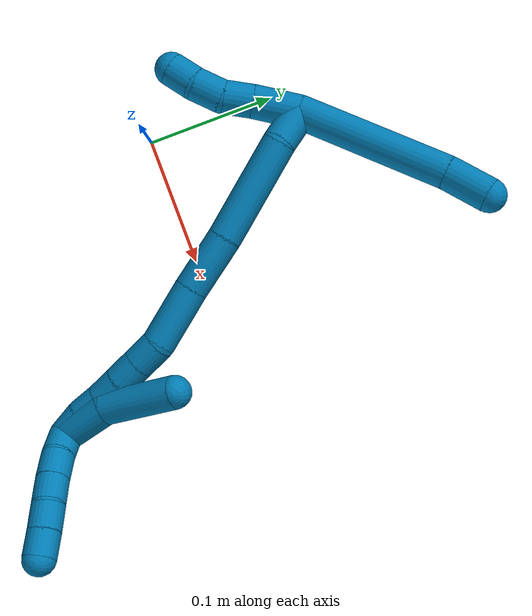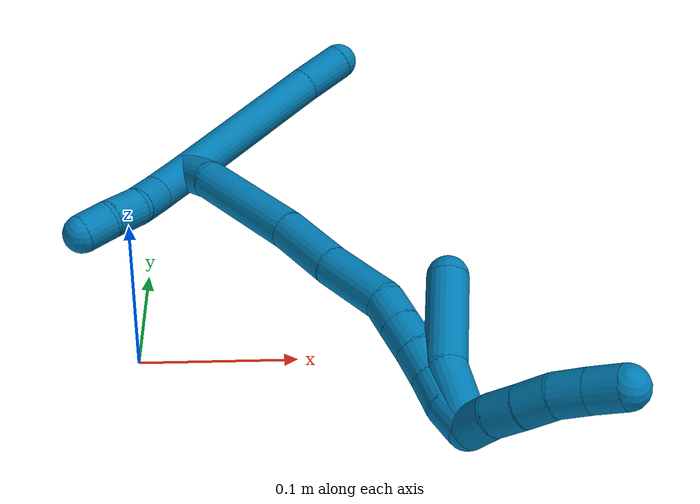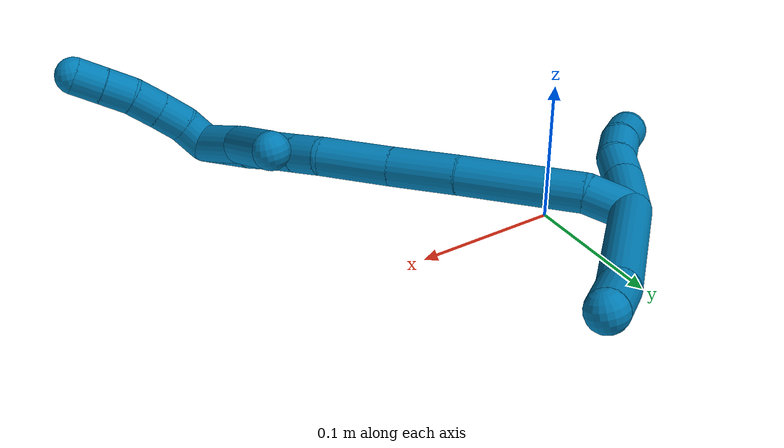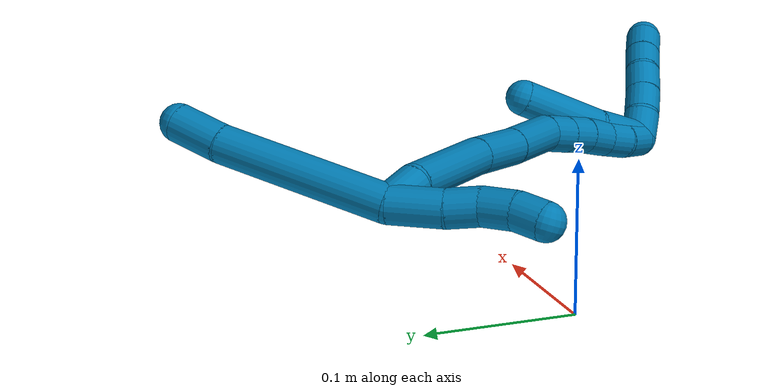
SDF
<sdf version="1.7">
 <world name="default">
  <model name="9">
   <static>0</static>
   <link name="9">
    <collision name="collision-cylinder-e_1_2_8">
     <pose>0.039 0.04317 0.000363 -1.56238 0.734672 -0.729048</pose>
     <geometry><cylinder><radius>0.0125</radius><length>0.116359</length></cylinder></geometry>
     <surface>
      <friction><ode><mu>1.16</mu><mu2>1.16</mu2><slip1>0</slip1><slip2>0</slip2></ode></friction>
      <contact><ode><kp>1e+06</kp><kd>1</kd><max_vel>0</max_vel><min_depth>0.001</min_depth></ode></contact>
     </surface>
    </collision>
    <visual name="visual-cylinder-e_1_2_8">
     <pose>0.039 0.04317 0.000363 -1.56238 0.734672 -0.729048</pose>
     <geometry><cylinder><radius>0.0125</radius><length>0.116359</length></cylinder></geometry>
     <material><ambient>0 0.490196 0.709804 1</ambient></material>
    </visual>
    <collision name="collision-cylinder-e_2_8_6">
     <pose>0.090286 0.097723 0.002293 -1.434 0.818892 -0.723368</pose>
     <geometry><cylinder><radius>0.0125</radius><length>0.033641</length></cylinder></geometry>
     <surface>
      <friction><ode><mu>1.16</mu><mu2>1.16</mu2><slip1>0</slip1><slip2>0</slip2></ode></friction>
      <contact><ode><kp>1e+06</kp><kd>1</kd><max_vel>0</max_vel><min_depth>0.001</min_depth></ode></contact>
     </surface>
    </collision>
    <visual name="visual-cylinder-e_2_8_6">
     <pose>0.090286 0.097723 0.002293 -1.434 0.818892 -0.723368</pose>
     <geometry><cylinder><radius>0.0125</radius><length>0.033641</length></cylinder></geometry>
     <material><ambient>0 0.490196 0.709804 1</ambient></material>
    </visual>
    <collision name="collision-cylinder-e_1_2_9">
     <pose>-0.009605 -0.014171 0.004277 1.27768 -0.575599 -0.432843</pose>
     <geometry><cylinder><radius>0.0125</radius><length>0.035291</length></cylinder></geometry>
     <surface>
      <friction><ode><mu>1.16</mu><mu2>1.16</mu2><slip1>0</slip1><slip2>0</slip2></ode></friction>
      <contact><ode><kp>1e+06</kp><kd>1</kd><max_vel>0</max_vel><min_depth>0.001</min_depth></ode></contact>
     </surface>
    </collision>
    <visual name="visual-cylinder-e_1_2_9">
     <pose>-0.009605 -0.014171 0.004277 1.27768 -0.575599 -0.432843</pose>
     <geometry><cylinder><radius>0.0125</radius><length>0.035291</length></cylinder></geometry>
     <material><ambient>0 0.490196 0.709804 1</ambient></material>
    </visual>
    <collision name="collision-cylinder-e_2_9_10">
     <pose>-0.024412 -0.037145 0.012592 1.14072 -0.492847 -0.319951</pose>
     <geometry><cylinder><radius>0.0125</radius><length>0.021988</length></cylinder></geometry>
     <surface>
      <friction><ode><mu>1.16</mu><mu2>1.16</mu2><slip1>0</slip1><slip2>0</slip2></ode></friction>
      <contact><ode><kp>1e+06</kp><kd>1</kd><max_vel>0</max_vel><min_depth>0.001</min_depth></ode></contact>
     </surface>
    </collision>
    <visual name="visual-cylinder-e_2_9_10">
     <pose>-0.024412 -0.037145 0.012592 1.14072 -0.492847 -0.319951</pose>
     <geometry><cylinder><radius>0.0125</radius><length>0.021988</length></cylinder></geometry>
     <material><ambient>0 0.490196 0.709804 1</ambient></material>
    </visual>
    <collision name="collision-cylinder-e_3_10_11">
     <pose>-0.037664 -0.053575 0.018881 1.28381 -0.791615 -0.605502</pose>
     <geometry><cylinder><radius>0.0125</radius><length>0.022631</length></cylinder></geometry>
     <surface>
      <friction><ode><mu>1.16</mu><mu2>1.16</mu2><slip1>0</slip1><slip2>0</slip2></ode></friction>
      <contact><ode><kp>1e+06</kp><kd>1</kd><max_vel>0</max_vel><min_depth>0.001</min_depth></ode></contact>
     </surface>
    </collision>
    <visual name="visual-cylinder-e_3_10_11">
     <pose>-0.037664 -0.053575 0.018881 1.28381 -0.791615 -0.605502</pose>
     <geometry><cylinder><radius>0.0125</radius><length>0.022631</length></cylinder></geometry>
     <material><ambient>0 0.490196 0.709804 1</ambient></material>
    </visual>
    <collision name="collision-cylinder-e_4_11_5">
     <pose>-0.053603 -0.06742 0.021084 1.57845 -0.903103 -0.909123</pose>
     <geometry><cylinder><radius>0.0125</radius><length>0.02009</length></cylinder></geometry>
     <surface>
      <friction><ode><mu>1.16</mu><mu2>1.16</mu2><slip1>0</slip1><slip2>0</slip2></ode></friction>
      <contact><ode><kp>1e+06</kp><kd>1</kd><max_vel>0</max_vel><min_depth>0.001</min_depth></ode></contact>
     </surface>
    </collision>
    <visual name="visual-cylinder-e_4_11_5">
     <pose>-0.053603 -0.06742 0.021084 1.57845 -0.903103 -0.909123</pose>
     <geometry><cylinder><radius>0.0125</radius><length>0.02009</length></cylinder></geometry>
     <material><ambient>0 0.490196 0.709804 1</ambient></material>
    </visual>
    <collision name="collision-cylinder-e_1_2_12">
     <pose>0.007942 -0.00925 0.007334 0.900405 0.592247 0.292796</pose>
     <geometry><cylinder><radius>0.0125</radius><length>0.028456</length></cylinder></geometry>
     <surface>
      <friction><ode><mu>1.16</mu><mu2>1.16</mu2><slip1>0</slip1><slip2>0</slip2></ode></friction>
      <contact><ode><kp>1e+06</kp><kd>1</kd><max_vel>0</max_vel><min_depth>0.001</min_depth></ode></contact>
     </surface>
    </collision>
    <visual name="visual-cylinder-e_1_2_12">
     <pose>0.007942 -0.00925 0.007334 0.900405 0.592247 0.292796</pose>
     <geometry><cylinder><radius>0.0125</radius><length>0.028456</length></cylinder></geometry>
     <material><ambient>0 0.490196 0.709804 1</ambient></material>
    </visual>
    <collision name="collision-cylinder-e_2_12_13">
     <pose>0.041094 -0.046832 0.025709 1.19923 0.692206 0.483378</pose>
     <geometry><cylinder><radius>0.0125</radius><length>0.078997</length></cylinder></geometry>
     <surface>
      <friction><ode><mu>1.16</mu><mu2>1.16</mu2><slip1>0</slip1><slip2>0</slip2></ode></friction>
      <contact><ode><kp>1e+06</kp><kd>1</kd><max_vel>0</max_vel><min_depth>0.001</min_depth></ode></contact>
     </surface>
    </collision>
    <visual name="visual-cylinder-e_2_12_13">
     <pose>0.041094 -0.046832 0.025709 1.19923 0.692206 0.483378</pose>
     <geometry><cylinder><radius>0.0125</radius><length>0.078997</length></cylinder></geometry>
     <material><ambient>0 0.490196 0.709804 1</ambient></material>
    </visual>
    <collision name="collision-cylinder-e_3_13_14">
     <pose>0.079303 -0.092198 0.042001 1.27171 0.630118 0.472156</pose>
     <geometry><cylinder><radius>0.0125</radius><length>0.044123</length></cylinder></geometry>
     <surface>
      <friction><ode><mu>1.16</mu><mu2>1.16</mu2><slip1>0</slip1><slip2>0</slip2></ode></friction>
      <contact><ode><kp>1e+06</kp><kd>1</kd><max_vel>0</max_vel><min_depth>0.001</min_depth></ode></contact>
     </surface>
    </collision>
    <visual name="visual-cylinder-e_3_13_14">
     <pose>0.079303 -0.092198 0.042001 1.27171 0.630118 0.472156</pose>
     <geometry><cylinder><radius>0.0125</radius><length>0.044123</length></cylinder></geometry>
     <material><ambient>0 0.490196 0.709804 1</ambient></material>
    </visual>
    <collision name="collision-cylinder-e_4_14_15">
     <pose>0.106976 -0.126396 0.053737 1.20962 0.674584 0.475637</pose>
     <geometry><cylinder><radius>0.0125</radius><length>0.046988</length></cylinder></geometry>
     <surface>
      <friction><ode><mu>1.16</mu><mu2>1.16</mu2><slip1>0</slip1><slip2>0</slip2></ode></friction>
      <contact><ode><kp>1e+06</kp><kd>1</kd><max_vel>0</max_vel><min_depth>0.001</min_depth></ode></contact>
     </surface>
    </collision>
    <visual name="visual-cylinder-e_4_14_15">
     <pose>0.106976 -0.126396 0.053737 1.20962 0.674584 0.475637</pose>
     <geometry><cylinder><radius>0.0125</radius><length>0.046988</length></cylinder></geometry>
     <material><ambient>0 0.490196 0.709804 1</ambient></material>
    </visual>
    <collision name="collision-cylinder-e_5_15_16">
     <pose>0.125921 -0.153116 0.061519 1.43574 0.416954 0.365377</pose>
     <geometry><cylinder><radius>0.0125</radius><length>0.021094</length></cylinder></geometry>
     <surface>
      <friction><ode><mu>1.16</mu><mu2>1.16</mu2><slip1>0</slip1><slip2>0</slip2></ode></friction>
      <contact><ode><kp>1e+06</kp><kd>1</kd><max_vel>0</max_vel><min_depth>0.001</min_depth></ode></contact>
     </surface>
    </collision>
    <visual name="visual-cylinder-e_5_15_16">
     <pose>0.125921 -0.153116 0.061519 1.43574 0.416954 0.365377</pose>
     <geometry><cylinder><radius>0.0125</radius><length>0.021094</length></cylinder></geometry>
     <material><ambient>0 0.490196 0.709804 1</ambient></material>
    </visual>
    <collision name="collision-cylinder-e_6_16_17">
     <pose>0.134297 -0.171752 0.064128 1.42752 0.420645 0.365655</pose>
     <geometry><cylinder><radius>0.0125</radius><length>0.020102</length></cylinder></geometry>
     <surface>
      <friction><ode><mu>1.16</mu><mu2>1.16</mu2><slip1>0</slip1><slip2>0</slip2></ode></friction>
      <contact><ode><kp>1e+06</kp><kd>1</kd><max_vel>0</max_vel><min_depth>0.001</min_depth></ode></contact>
     </surface>
    </collision>
    <visual name="visual-cylinder-e_6_16_17">
     <pose>0.134297 -0.171752 0.064128 1.42752 0.420645 0.365655</pose>
     <geometry><cylinder><radius>0.0125</radius><length>0.020102</length></cylinder></geometry>
     <material><ambient>0 0.490196 0.709804 1</ambient></material>
    </visual>
    <collision name="collision-cylinder-e_7_17_18">
     <pose>0.142365 -0.19012 0.066067 1.5032 0.402597 0.376904</pose>
     <geometry><cylinder><radius>0.0125</radius><length>0.020234</length></cylinder></geometry>
     <surface>
      <friction><ode><mu>1.16</mu><mu2>1.16</mu2><slip1>0</slip1><slip2>0</slip2></ode></friction>
      <contact><ode><kp>1e+06</kp><kd>1</kd><max_vel>0</max_vel><min_depth>0.001</min_depth></ode></contact>
     </surface>
    </collision>
    <visual name="visual-cylinder-e_7_17_18">
     <pose>0.142365 -0.19012 0.066067 1.5032 0.402597 0.376904</pose>
     <geometry><cylinder><radius>0.0125</radius><length>0.020234</length></cylinder></geometry>
     <material><ambient>0 0.490196 0.709804 1</ambient></material>
    </visual>
    <collision name="collision-cylinder-e_8_18_19">
     <pose>0.149633 -0.208785 0.067776 1.45601 0.336621 0.300621</pose>
     <geometry><cylinder><radius>0.0125</radius><length>0.020003</length></cylinder></geometry>
     <surface>
      <friction><ode><mu>1.16</mu><mu2>1.16</mu2><slip1>0</slip1><slip2>0</slip2></ode></friction>
      <contact><ode><kp>1e+06</kp><kd>1</kd><max_vel>0</max_vel><min_depth>0.001</min_depth></ode></contact>
     </surface>
    </collision>
    <visual name="visual-cylinder-e_8_18_19">
     <pose>0.149633 -0.208785 0.067776 1.45601 0.336621 0.300621</pose>
     <geometry><cylinder><radius>0.0125</radius><length>0.020003</length></cylinder></geometry>
     <material><ambient>0 0.490196 0.709804 1</ambient></material>
    </visual>
    <collision name="collision-cylinder-e_9_19_1">
     <pose>0.157868 -0.226636 0.070835 1.34158 0.515696 0.412589</pose>
     <geometry><cylinder><radius>0.0125</radius><length>0.020003</length></cylinder></geometry>
     <surface>
      <friction><ode><mu>1.16</mu><mu2>1.16</mu2><slip1>0</slip1><slip2>0</slip2></ode></friction>
      <contact><ode><kp>1e+06</kp><kd>1</kd><max_vel>0</max_vel><min_depth>0.001</min_depth></ode></contact>
     </surface>
    </collision>
    <visual name="visual-cylinder-e_9_19_1">
     <pose>0.157868 -0.226636 0.070835 1.34158 0.515696 0.412589</pose>
     <geometry><cylinder><radius>0.0125</radius><length>0.020003</length></cylinder></geometry>
     <material><ambient>0 0.490196 0.709804 1</ambient></material>
    </visual>
    <collision name="collision-cylinder-e_1_1_20">
     <pose>0.167923 -0.23621 0.081329 0.128546 0.537839 0.035472</pose>
     <geometry><cylinder><radius>0.0125</radius><length>0.02</length></cylinder></geometry>
     <surface>
      <friction><ode><mu>1.16</mu><mu2>1.16</mu2><slip1>0</slip1><slip2>0</slip2></ode></friction>
      <contact><ode><kp>1e+06</kp><kd>1</kd><max_vel>0</max_vel><min_depth>0.001</min_depth></ode></contact>
     </surface>
    </collision>
    <visual name="visual-cylinder-e_1_1_20">
     <pose>0.167923 -0.23621 0.081329 0.128546 0.537839 0.035472</pose>
     <geometry><cylinder><radius>0.0125</radius><length>0.02</length></cylinder></geometry>
     <material><ambient>0 0.490196 0.709804 1</ambient></material>
    </visual>
    <collision name="collision-cylinder-e_2_20_21">
     <pose>0.179714 -0.238666 0.097174 0.182805 0.729928 0.070013</pose>
     <geometry><cylinder><radius>0.0125</radius><length>0.02</length></cylinder></geometry>
     <surface>
      <friction><ode><mu>1.16</mu><mu2>1.16</mu2><slip1>0</slip1><slip2>0</slip2></ode></friction>
      <contact><ode><kp>1e+06</kp><kd>1</kd><max_vel>0</max_vel><min_depth>0.001</min_depth></ode></contact>
     </surface>
    </collision>
    <visual name="visual-cylinder-e_2_20_21">
     <pose>0.179714 -0.238666 0.097174 0.182805 0.729928 0.070013</pose>
     <geometry><cylinder><radius>0.0125</radius><length>0.02</length></cylinder></geometry>
     <material><ambient>0 0.490196 0.709804 1</ambient></material>
    </visual>
    <collision name="collision-cylinder-e_3_21_22">
     <pose>0.193343 -0.240876 0.111632 0.11935 0.769831 0.0484</pose>
     <geometry><cylinder><radius>0.0125</radius><length>0.02</length></cylinder></geometry>
     <surface>
      <friction><ode><mu>1.16</mu><mu2>1.16</mu2><slip1>0</slip1><slip2>0</slip2></ode></friction>
      <contact><ode><kp>1e+06</kp><kd>1</kd><max_vel>0</max_vel><min_depth>0.001</min_depth></ode></contact>
     </surface>
    </collision>
    <visual name="visual-cylinder-e_3_21_22">
     <pose>0.193343 -0.240876 0.111632 0.11935 0.769831 0.0484</pose>
     <geometry><cylinder><radius>0.0125</radius><length>0.02</length></cylinder></geometry>
     <material><ambient>0 0.490196 0.709804 1</ambient></material>
    </visual>
    <collision name="collision-cylinder-e_4_22_23">
     <pose>0.208089 -0.243639 0.124738 0.309052 0.892541 0.148784</pose>
     <geometry><cylinder><radius>0.0125</radius><length>0.02</length></cylinder></geometry>
     <surface>
      <friction><ode><mu>1.16</mu><mu2>1.16</mu2><slip1>0</slip1><slip2>0</slip2></ode></friction>
      <contact><ode><kp>1e+06</kp><kd>1</kd><max_vel>0</max_vel><min_depth>0.001</min_depth></ode></contact>
     </surface>
    </collision>
    <visual name="visual-cylinder-e_4_22_23">
     <pose>0.208089 -0.243639 0.124738 0.309052 0.892541 0.148784</pose>
     <geometry><cylinder><radius>0.0125</radius><length>0.02</length></cylinder></geometry>
     <material><ambient>0 0.490196 0.709804 1</ambient></material>
    </visual>
    <collision name="collision-cylinder-e_5_23_4">
     <pose>0.223618 -0.247848 0.136612 0.371979 0.88537 0.177933</pose>
     <geometry><cylinder><radius>0.0125</radius><length>0.02</length></cylinder></geometry>
     <surface>
      <friction><ode><mu>1.16</mu><mu2>1.16</mu2><slip1>0</slip1><slip2>0</slip2></ode></friction>
      <contact><ode><kp>1e+06</kp><kd>1</kd><max_vel>0</max_vel><min_depth>0.001</min_depth></ode></contact>
     </surface>
    </collision>
    <visual name="visual-cylinder-e_5_23_4">
     <pose>0.223618 -0.247848 0.136612 0.371979 0.88537 0.177933</pose>
     <geometry><cylinder><radius>0.0125</radius><length>0.02</length></cylinder></geometry>
     <material><ambient>0 0.490196 0.709804 1</ambient></material>
    </visual>
    <collision name="collision-cylinder-e_1_1_24">
     <pose>0.157894 -0.215439 0.072853 -1.5687 -0.244445 0.243938</pose>
     <geometry><cylinder><radius>0.0125</radius><length>0.040546</length></cylinder></geometry>
     <surface>
      <friction><ode><mu>1.16</mu><mu2>1.16</mu2><slip1>0</slip1><slip2>0</slip2></ode></friction>
      <contact><ode><kp>1e+06</kp><kd>1</kd><max_vel>0</max_vel><min_depth>0.001</min_depth></ode></contact>
     </surface>
    </collision>
    <visual name="visual-cylinder-e_1_1_24">
     <pose>0.157894 -0.215439 0.072853 -1.5687 -0.244445 0.243938</pose>
     <geometry><cylinder><radius>0.0125</radius><length>0.040546</length></cylinder></geometry>
     <material><ambient>0 0.490196 0.709804 1</ambient></material>
    </visual>
    <collision name="collision-cylinder-e_2_24_3">
     <pose>0.154918 -0.166198 0.075252 -1.49122 0.064978 -0.060006</pose>
     <geometry><cylinder><radius>0.0125</radius><length>0.059454</length></cylinder></geometry>
     <surface>
      <friction><ode><mu>1.16</mu><mu2>1.16</mu2><slip1>0</slip1><slip2>0</slip2></ode></friction>
      <contact><ode><kp>1e+06</kp><kd>1</kd><max_vel>0</max_vel><min_depth>0.001</min_depth></ode></contact>
     </surface>
    </collision>
    <visual name="visual-cylinder-e_2_24_3">
     <pose>0.154918 -0.166198 0.075252 -1.49122 0.064978 -0.060006</pose>
     <geometry><cylinder><radius>0.0125</radius><length>0.059454</length></cylinder></geometry>
     <material><ambient>0 0.490196 0.709804 1</ambient></material>
    </visual>
    <collision name="collision-sphere-3">
     <pose>0.156848 -0.136628 0.07761 0 -0 0</pose>
     <geometry><sphere><radius>0.0125</radius></sphere></geometry>
     <surface>
      <friction><ode><mu>1.16</mu><mu2>1.16</mu2><slip1>0</slip1><slip2>0</slip2></ode></friction>
      <contact><ode><kp>1e+06</kp><kd>1</kd><max_vel>0</max_vel><min_depth>0.001</min_depth></ode></contact>
     </surface>
    </collision>
    <visual name="visual-sphere-3">
     <pose>0.156848 -0.136628 0.07761 0 -0 0</pose>
     <geometry><sphere><radius>0.0125</radius></sphere></geometry>
     <material><ambient>0 0.490196 0.709804 1</ambient></material>
    </visual>
    <collision name="collision-sphere-24">
     <pose>0.152988 -0.195769 0.072894 0 -0 0</pose>
     <geometry><sphere><radius>0.0125</radius></sphere></geometry>
     <surface>
      <friction><ode><mu>1.16</mu><mu2>1.16</mu2><slip1>0</slip1><slip2>0</slip2></ode></friction>
      <contact><ode><kp>1e+06</kp><kd>1</kd><max_vel>0</max_vel><min_depth>0.001</min_depth></ode></contact>
     </surface>
    </collision>
    <visual name="visual-sphere-24">
     <pose>0.152988 -0.195769 0.072894 0 -0 0</pose>
     <geometry><sphere><radius>0.0125</radius></sphere></geometry>
     <material><ambient>0 0.490196 0.709804 1</ambient></material>
    </visual>
    <collision name="collision-sphere-4">
     <pose>0.231359 -0.250149 0.142509 0 -0 0</pose>
     <geometry><sphere><radius>0.0125</radius></sphere></geometry>
     <surface>
      <friction><ode><mu>1.16</mu><mu2>1.16</mu2><slip1>0</slip1><slip2>0</slip2></ode></friction>
      <contact><ode><kp>1e+06</kp><kd>1</kd><max_vel>0</max_vel><min_depth>0.001</min_depth></ode></contact>
     </surface>
    </collision>
    <visual name="visual-sphere-4">
     <pose>0.231359 -0.250149 0.142509 0 -0 0</pose>
     <geometry><sphere><radius>0.0125</radius></sphere></geometry>
     <material><ambient>0 0.490196 0.709804 1</ambient></material>
    </visual>
    <collision name="collision-sphere-23">
     <pose>0.215876 -0.245547 0.130715 0 -0 0</pose>
     <geometry><sphere><radius>0.0125</radius></sphere></geometry>
     <surface>
      <friction><ode><mu>1.16</mu><mu2>1.16</mu2><slip1>0</slip1><slip2>0</slip2></ode></friction>
      <contact><ode><kp>1e+06</kp><kd>1</kd><max_vel>0</max_vel><min_depth>0.001</min_depth></ode></contact>
     </surface>
    </collision>
    <visual name="visual-sphere-23">
     <pose>0.215876 -0.245547 0.130715 0 -0 0</pose>
     <geometry><sphere><radius>0.0125</radius></sphere></geometry>
     <material><ambient>0 0.490196 0.709804 1</ambient></material>
    </visual>
    <collision name="collision-sphere-22">
     <pose>0.200303 -0.241731 0.118761 0 -0 0</pose>
     <geometry><sphere><radius>0.0125</radius></sphere></geometry>
     <surface>
      <friction><ode><mu>1.16</mu><mu2>1.16</mu2><slip1>0</slip1><slip2>0</slip2></ode></friction>
      <contact><ode><kp>1e+06</kp><kd>1</kd><max_vel>0</max_vel><min_depth>0.001</min_depth></ode></contact>
     </surface>
    </collision>
    <visual name="visual-sphere-22">
     <pose>0.200303 -0.241731 0.118761 0 -0 0</pose>
     <geometry><sphere><radius>0.0125</radius></sphere></geometry>
     <material><ambient>0 0.490196 0.709804 1</ambient></material>
    </visual>
    <collision name="collision-sphere-21">
     <pose>0.186383 -0.240021 0.104502 0 -0 0</pose>
     <geometry><sphere><radius>0.0125</radius></sphere></geometry>
     <surface>
      <friction><ode><mu>1.16</mu><mu2>1.16</mu2><slip1>0</slip1><slip2>0</slip2></ode></friction>
      <contact><ode><kp>1e+06</kp><kd>1</kd><max_vel>0</max_vel><min_depth>0.001</min_depth></ode></contact>
     </surface>
    </collision>
    <visual name="visual-sphere-21">
     <pose>0.186383 -0.240021 0.104502 0 -0 0</pose>
     <geometry><sphere><radius>0.0125</radius></sphere></geometry>
     <material><ambient>0 0.490196 0.709804 1</ambient></material>
    </visual>
    <collision name="collision-sphere-20">
     <pose>0.173046 -0.237311 0.089846 0 -0 0</pose>
     <geometry><sphere><radius>0.0125</radius></sphere></geometry>
     <surface>
      <friction><ode><mu>1.16</mu><mu2>1.16</mu2><slip1>0</slip1><slip2>0</slip2></ode></friction>
      <contact><ode><kp>1e+06</kp><kd>1</kd><max_vel>0</max_vel><min_depth>0.001</min_depth></ode></contact>
     </surface>
    </collision>
    <visual name="visual-sphere-20">
     <pose>0.173046 -0.237311 0.089846 0 -0 0</pose>
     <geometry><sphere><radius>0.0125</radius></sphere></geometry>
     <material><ambient>0 0.490196 0.709804 1</ambient></material>
    </visual>
    <collision name="collision-sphere-11">
     <pose>-0.045715 -0.061201 0.021132 0 -0 0</pose>
     <geometry><sphere><radius>0.0125</radius></sphere></geometry>
     <surface>
      <friction><ode><mu>1.16</mu><mu2>1.16</mu2><slip1>0</slip1><slip2>0</slip2></ode></friction>
      <contact><ode><kp>1e+06</kp><kd>1</kd><max_vel>0</max_vel><min_depth>0.001</min_depth></ode></contact>
     </surface>
    </collision>
    <visual name="visual-sphere-11">
     <pose>-0.045715 -0.061201 0.021132 0 -0 0</pose>
     <geometry><sphere><radius>0.0125</radius></sphere></geometry>
     <material><ambient>0 0.490196 0.709804 1</ambient></material>
    </visual>
    <collision name="collision-sphere-10">
     <pose>-0.029614 -0.045949 0.01663 0 -0 0</pose>
     <geometry><sphere><radius>0.0125</radius></sphere></geometry>
     <surface>
      <friction><ode><mu>1.16</mu><mu2>1.16</mu2><slip1>0</slip1><slip2>0</slip2></ode></friction>
      <contact><ode><kp>1e+06</kp><kd>1</kd><max_vel>0</max_vel><min_depth>0.001</min_depth></ode></contact>
     </surface>
    </collision>
    <visual name="visual-sphere-10">
     <pose>-0.029614 -0.045949 0.01663 0 -0 0</pose>
     <geometry><sphere><radius>0.0125</radius></sphere></geometry>
     <material><ambient>0 0.490196 0.709804 1</ambient></material>
    </visual>
    <collision name="collision-sphere-6">
     <pose>0.102572 0.109104 0.00386 0 -0 0</pose>
     <geometry><sphere><radius>0.0125</radius></sphere></geometry>
     <surface>
      <friction><ode><mu>1.16</mu><mu2>1.16</mu2><slip1>0</slip1><slip2>0</slip2></ode></friction>
      <contact><ode><kp>1e+06</kp><kd>1</kd><max_vel>0</max_vel><min_depth>0.001</min_depth></ode></contact>
     </surface>
    </collision>
    <visual name="visual-sphere-6">
     <pose>0.102572 0.109104 0.00386 0 -0 0</pose>
     <geometry><sphere><radius>0.0125</radius></sphere></geometry>
     <material><ambient>0 0.490196 0.709804 1</ambient></material>
    </visual>
    <collision name="collision-sphere-9">
     <pose>-0.01921 -0.028342 0.008554 0 -0 0</pose>
     <geometry><sphere><radius>0.0125</radius></sphere></geometry>
     <surface>
      <friction><ode><mu>1.16</mu><mu2>1.16</mu2><slip1>0</slip1><slip2>0</slip2></ode></friction>
      <contact><ode><kp>1e+06</kp><kd>1</kd><max_vel>0</max_vel><min_depth>0.001</min_depth></ode></contact>
     </surface>
    </collision>
    <visual name="visual-sphere-9">
     <pose>-0.01921 -0.028342 0.008554 0 -0 0</pose>
     <geometry><sphere><radius>0.0125</radius></sphere></geometry>
     <material><ambient>0 0.490196 0.709804 1</ambient></material>
    </visual>
    <collision name="collision-sphere-2">
     <geometry><sphere><radius>0.0125</radius></sphere></geometry>
     <surface>
      <friction><ode><mu>1.16</mu><mu2>1.16</mu2><slip1>0</slip1><slip2>0</slip2></ode></friction>
      <contact><ode><kp>1e+06</kp><kd>1</kd><max_vel>0</max_vel><min_depth>0.001</min_depth></ode></contact>
     </surface>
    </collision>
    <visual name="visual-sphere-2">
     <geometry><sphere><radius>0.0125</radius></sphere></geometry>
     <material><ambient>0 0.490196 0.709804 1</ambient></material>
    </visual>
    <collision name="collision-sphere-19">
     <pose>0.152936 -0.218162 0.068858 0 -0 0</pose>
     <geometry><sphere><radius>0.0125</radius></sphere></geometry>
     <surface>
      <friction><ode><mu>1.16</mu><mu2>1.16</mu2><slip1>0</slip1><slip2>0</slip2></ode></friction>
      <contact><ode><kp>1e+06</kp><kd>1</kd><max_vel>0</max_vel><min_depth>0.001</min_depth></ode></contact>
     </surface>
    </collision>
    <visual name="visual-sphere-19">
     <pose>0.152936 -0.218162 0.068858 0 -0 0</pose>
     <geometry><sphere><radius>0.0125</radius></sphere></geometry>
     <material><ambient>0 0.490196 0.709804 1</ambient></material>
    </visual>
    <collision name="collision-sphere-8">
     <pose>0.078 0.086341 0.000727 0 -0 0</pose>
     <geometry><sphere><radius>0.0125</radius></sphere></geometry>
     <surface>
      <friction><ode><mu>1.16</mu><mu2>1.16</mu2><slip1>0</slip1><slip2>0</slip2></ode></friction>
      <contact><ode><kp>1e+06</kp><kd>1</kd><max_vel>0</max_vel><min_depth>0.001</min_depth></ode></contact>
     </surface>
    </collision>
    <visual name="visual-sphere-8">
     <pose>0.078 0.086341 0.000727 0 -0 0</pose>
     <geometry><sphere><radius>0.0125</radius></sphere></geometry>
     <material><ambient>0 0.490196 0.709804 1</ambient></material>
    </visual>
    <collision name="collision-sphere-5">
     <pose>-0.061491 -0.07364 0.021037 0 -0 0</pose>
     <geometry><sphere><radius>0.0125</radius></sphere></geometry>
     <surface>
      <friction><ode><mu>1.16</mu><mu2>1.16</mu2><slip1>0</slip1><slip2>0</slip2></ode></friction>
      <contact><ode><kp>1e+06</kp><kd>1</kd><max_vel>0</max_vel><min_depth>0.001</min_depth></ode></contact>
     </surface>
    </collision>
    <visual name="visual-sphere-5">
     <pose>-0.061491 -0.07364 0.021037 0 -0 0</pose>
     <geometry><sphere><radius>0.0125</radius></sphere></geometry>
     <material><ambient>0 0.490196 0.709804 1</ambient></material>
    </visual>
    <collision name="collision-sphere-12">
     <pose>0.015885 -0.0185 0.014668 0 -0 0</pose>
     <geometry><sphere><radius>0.0125</radius></sphere></geometry>
     <surface>
      <friction><ode><mu>1.16</mu><mu2>1.16</mu2><slip1>0</slip1><slip2>0</slip2></ode></friction>
      <contact><ode><kp>1e+06</kp><kd>1</kd><max_vel>0</max_vel><min_depth>0.001</min_depth></ode></contact>
     </surface>
    </collision>
    <visual name="visual-sphere-12">
     <pose>0.015885 -0.0185 0.014668 0 -0 0</pose>
     <geometry><sphere><radius>0.0125</radius></sphere></geometry>
     <material><ambient>0 0.490196 0.709804 1</ambient></material>
    </visual>
    <collision name="collision-sphere-13">
     <pose>0.066303 -0.075165 0.036749 0 -0 0</pose>
     <geometry><sphere><radius>0.0125</radius></sphere></geometry>
     <surface>
      <friction><ode><mu>1.16</mu><mu2>1.16</mu2><slip1>0</slip1><slip2>0</slip2></ode></friction>
      <contact><ode><kp>1e+06</kp><kd>1</kd><max_vel>0</max_vel><min_depth>0.001</min_depth></ode></contact>
     </surface>
    </collision>
    <visual name="visual-sphere-13">
     <pose>0.066303 -0.075165 0.036749 0 -0 0</pose>
     <geometry><sphere><radius>0.0125</radius></sphere></geometry>
     <material><ambient>0 0.490196 0.709804 1</ambient></material>
    </visual>
    <collision name="collision-sphere-14">
     <pose>0.092303 -0.109232 0.047253 0 -0 0</pose>
     <geometry><sphere><radius>0.0125</radius></sphere></geometry>
     <surface>
      <friction><ode><mu>1.16</mu><mu2>1.16</mu2><slip1>0</slip1><slip2>0</slip2></ode></friction>
      <contact><ode><kp>1e+06</kp><kd>1</kd><max_vel>0</max_vel><min_depth>0.001</min_depth></ode></contact>
     </surface>
    </collision>
    <visual name="visual-sphere-14">
     <pose>0.092303 -0.109232 0.047253 0 -0 0</pose>
     <geometry><sphere><radius>0.0125</radius></sphere></geometry>
     <material><ambient>0 0.490196 0.709804 1</ambient></material>
    </visual>
    <collision name="collision-sphere-15">
     <pose>0.12165 -0.14356 0.060221 0 -0 0</pose>
     <geometry><sphere><radius>0.0125</radius></sphere></geometry>
     <surface>
      <friction><ode><mu>1.16</mu><mu2>1.16</mu2><slip1>0</slip1><slip2>0</slip2></ode></friction>
      <contact><ode><kp>1e+06</kp><kd>1</kd><max_vel>0</max_vel><min_depth>0.001</min_depth></ode></contact>
     </surface>
    </collision>
    <visual name="visual-sphere-15">
     <pose>0.12165 -0.14356 0.060221 0 -0 0</pose>
     <geometry><sphere><radius>0.0125</radius></sphere></geometry>
     <material><ambient>0 0.490196 0.709804 1</ambient></material>
    </visual>
    <collision name="collision-sphere-16">
     <pose>0.130193 -0.162672 0.062818 0 -0 0</pose>
     <geometry><sphere><radius>0.0125</radius></sphere></geometry>
     <surface>
      <friction><ode><mu>1.16</mu><mu2>1.16</mu2><slip1>0</slip1><slip2>0</slip2></ode></friction>
      <contact><ode><kp>1e+06</kp><kd>1</kd><max_vel>0</max_vel><min_depth>0.001</min_depth></ode></contact>
     </surface>
    </collision>
    <visual name="visual-sphere-16">
     <pose>0.130193 -0.162672 0.062818 0 -0 0</pose>
     <geometry><sphere><radius>0.0125</radius></sphere></geometry>
     <material><ambient>0 0.490196 0.709804 1</ambient></material>
    </visual>
    <collision name="collision-sphere-17">
     <pose>0.138402 -0.180833 0.065438 0 -0 0</pose>
     <geometry><sphere><radius>0.0125</radius></sphere></geometry>
     <surface>
      <friction><ode><mu>1.16</mu><mu2>1.16</mu2><slip1>0</slip1><slip2>0</slip2></ode></friction>
      <contact><ode><kp>1e+06</kp><kd>1</kd><max_vel>0</max_vel><min_depth>0.001</min_depth></ode></contact>
     </surface>
    </collision>
    <visual name="visual-sphere-17">
     <pose>0.138402 -0.180833 0.065438 0 -0 0</pose>
     <geometry><sphere><radius>0.0125</radius></sphere></geometry>
     <material><ambient>0 0.490196 0.709804 1</ambient></material>
    </visual>
    <collision name="collision-sphere-18">
     <pose>0.146329 -0.199407 0.066695 0 -0 0</pose>
     <geometry><sphere><radius>0.0125</radius></sphere></geometry>
     <surface>
      <friction><ode><mu>1.16</mu><mu2>1.16</mu2><slip1>0</slip1><slip2>0</slip2></ode></friction>
      <contact><ode><kp>1e+06</kp><kd>1</kd><max_vel>0</max_vel><min_depth>0.001</min_depth></ode></contact>
     </surface>
    </collision>
    <visual name="visual-sphere-18">
     <pose>0.146329 -0.199407 0.066695 0 -0 0</pose>
     <geometry><sphere><radius>0.0125</radius></sphere></geometry>
     <material><ambient>0 0.490196 0.709804 1</ambient></material>
    </visual>
    <collision name="collision-sphere-1">
     <pose>0.162801 -0.235109 0.072812 0 -0 0</pose>
     <geometry><sphere><radius>0.0125</radius></sphere></geometry>
     <surface>
      <friction><ode><mu>1.16</mu><mu2>1.16</mu2><slip1>0</slip1><slip2>0</slip2></ode></friction>
      <contact><ode><kp>1e+06</kp><kd>1</kd><max_vel>0</max_vel><min_depth>0.001</min_depth></ode></contact>
     </surface>
    </collision>
    <visual name="visual-sphere-1">
     <pose>0.162801 -0.235109 0.072812 0 -0 0</pose>
     <geometry><sphere><radius>0.0125</radius></sphere></geometry>
     <material><ambient>0 0.490196 0.709804 1</ambient></material>
    </visual>
    <inertial>
     <pose>0.088296 -0.095391 0.044226 0 -0 0</pose>
     <mass>0.75</mass>
     <inertia>
      <ixx>0.000143</ixx>
      <ixy>0</ixy>
      <ixz>0</ixz>
      <iyy>6.5e-05</iyy>
      <iyz>0</iyz>
      <izz>-0.000191</izz>
     </inertia>
    </inertial>
   </link>
   <pose>0.028881 0.111725 0.075512 0.354151 0.07974 -0.004362</pose>
  </model>
 </world>
</sdf>
